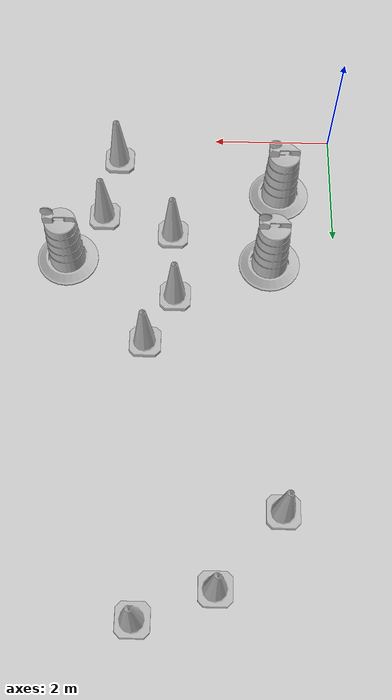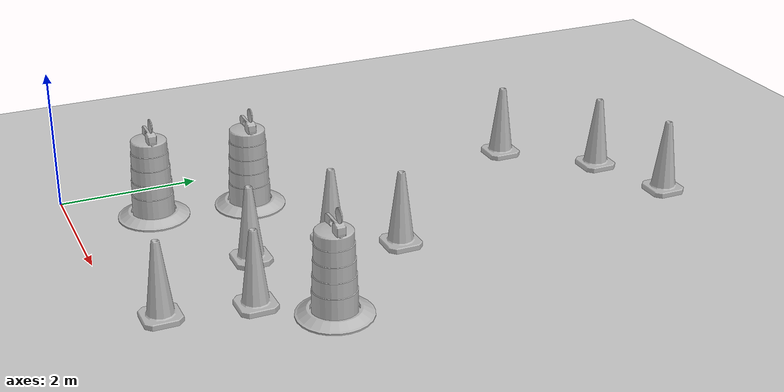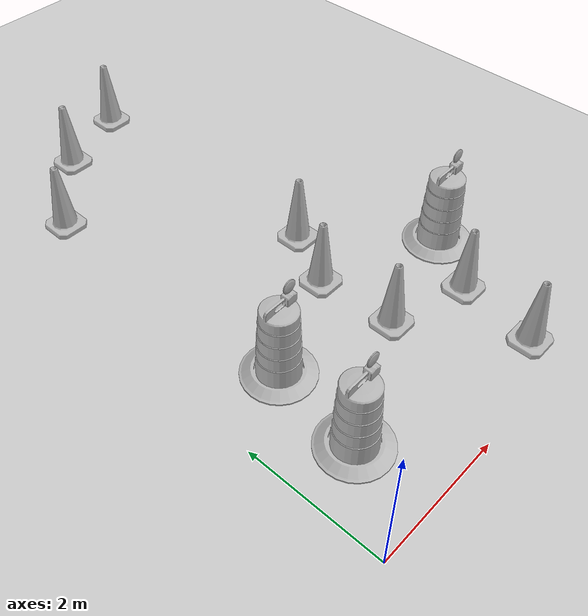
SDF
<sdf version="1.7">
 <world name="default">
  <light name="sun" type="directional">
   <pose>0 0 10 0 -0 0</pose>
   <diffuse>0.8 0.8 0.8 1</diffuse>
   <specular>0.2 0.2 0.2 1</specular>
   <attenuation>
    <range>1000</range>
    <constant>0.9</constant>
    <linear>0.01</linear>
    <quadratic>0.001</quadratic>
   </attenuation>
   <direction>-0.5 0.1 -0.9</direction>
   <spot><inner_angle>0</inner_angle><outer_angle>0</outer_angle><falloff>0</falloff></spot>
  </light>
  <model name="ground_plane">
   <static>1</static>
   <link name="link">
    <collision name="collision">
     <geometry><plane><normal>0 0 1</normal><size>100 100</size></plane></geometry>
     <surface><friction><ode><mu>100</mu><mu2>50</mu2></ode></friction></surface>
    </collision>
    <visual name="visual">
     <cast_shadows>0</cast_shadows>
     <geometry><plane><normal>0 0 1</normal><size>100 100</size></plane></geometry>
     <material>
      <script><uri>file://media/materials/scripts/gazebo.material</uri><name>Gazebo/Grey</name></script>
     </material>
    </visual>
   </link>
  </model>
  <gravity>0 0 -9.8</gravity>
  <magnetic_field>6e-06 2.3e-05 -4.2e-05</magnetic_field>
  <atmosphere type="adiabatic"/>
  <physics type="ode">
   <max_step_size>0.001</max_step_size>
   <real_time_factor>1</real_time_factor>
   <real_time_update_rate>1000</real_time_update_rate>
  </physics>
  <scene><ambient>0.4 0.4 0.4 1</ambient><background>0.7 0.7 0.7 1</background><shadows>1</shadows></scene>
  <audio><device>default</device></audio>
  <spherical_coordinates>
   <surface_model>EARTH_WGS84</surface_model>
   <latitude_deg>0</latitude_deg>
   <longitude_deg>0</longitude_deg>
   <elevation>0</elevation>
   <heading_deg>0</heading_deg>
  </spherical_coordinates>
  <model name="Construction Cone">
   <link name="link">
    <collision name="collision">
     <geometry>
      <mesh><scale>10 10 10</scale><uri>model://construction_cone/meshes/construction_cone.dae</uri></mesh>
     </geometry>
    </collision>
    <visual name="visual">
     <geometry>
      <mesh><scale>10 10 10</scale><uri>model://construction_cone/meshes/construction_cone.dae</uri></mesh>
     </geometry>
    </visual>
    <inertial>
     <inertia><ixx>1</ixx><ixy>0</ixy><ixz>0</ixz><iyy>1</iyy><iyz>0</iyz><izz>1</izz></inertia>
     <mass>1</mass>
    </inertial>
   </link>
   <pose>2.71471 1.99021 -0 0 -1e-06 0</pose>
  </model>
  <model name="Construction Cone_0">
   <link name="link">
    <collision name="collision">
     <geometry>
      <mesh><scale>10 10 10</scale><uri>model://construction_cone/meshes/construction_cone.dae</uri></mesh>
     </geometry>
    </collision>
    <visual name="visual">
     <geometry>
      <mesh><scale>10 10 10</scale><uri>model://construction_cone/meshes/construction_cone.dae</uri></mesh>
     </geometry>
    </visual>
    <inertial>
     <inertia><ixx>1</ixx><ixy>0</ixy><ixz>0</ixz><iyy>1</iyy><iyz>0</iyz><izz>1</izz></inertia>
     <mass>1</mass>
    </inertial>
   </link>
   <pose>2.64521 3.17405 -1e-05 -0 -0 -0</pose>
  </model>
  <model name="Construction Cone_1">
   <link name="link">
    <collision name="collision">
     <geometry>
      <mesh><scale>10 10 10</scale><uri>model://construction_cone/meshes/construction_cone.dae</uri></mesh>
     </geometry>
    </collision>
    <visual name="visual">
     <geometry>
      <mesh><scale>10 10 10</scale><uri>model://construction_cone/meshes/construction_cone.dae</uri></mesh>
     </geometry>
    </visual>
    <inertial>
     <inertia><ixx>1</ixx><ixy>0</ixy><ixz>0</ixz><iyy>1</iyy><iyz>0</iyz><izz>1</izz></inertia>
     <mass>1</mass>
    </inertial>
   </link>
   <pose>3.10228 4.00904 -0 0 -1e-06 0</pose>
  </model>
  <model name="Construction Cone_2">
   <link name="link">
    <collision name="collision">
     <geometry>
      <mesh><scale>10 10 10</scale><uri>model://construction_cone/meshes/construction_cone.dae</uri></mesh>
     </geometry>
    </collision>
    <visual name="visual">
     <geometry>
      <mesh><scale>10 10 10</scale><uri>model://construction_cone/meshes/construction_cone.dae</uri></mesh>
     </geometry>
    </visual>
    <inertial>
     <inertia><ixx>1</ixx><ixy>0</ixy><ixz>0</ixz><iyy>1</iyy><iyz>0</iyz><izz>1</izz></inertia>
     <mass>1</mass>
    </inertial>
   </link>
   <pose>0.951409 6.71825 -0 0 -1e-06 0</pose>
  </model>
  <model name="Construction Cone_3">
   <link name="link">
    <collision name="collision">
     <geometry>
      <mesh><scale>10 10 10</scale><uri>model://construction_cone/meshes/construction_cone.dae</uri></mesh>
     </geometry>
    </collision>
    <visual name="visual">
     <geometry>
      <mesh><scale>10 10 10</scale><uri>model://construction_cone/meshes/construction_cone.dae</uri></mesh>
     </geometry>
    </visual>
    <inertial>
     <inertia><ixx>1</ixx><ixy>0</ixy><ixz>0</ixz><iyy>1</iyy><iyz>0</iyz><izz>1</izz></inertia>
     <mass>1</mass>
    </inertial>
   </link>
   <pose>1.94072 7.84302 -0 0 -0 0</pose>
  </model>
  <model name="Construction Cone_4">
   <link name="link">
    <collision name="collision">
     <geometry>
      <mesh><scale>10 10 10</scale><uri>model://construction_cone/meshes/construction_cone.dae</uri></mesh>
     </geometry>
    </collision>
    <visual name="visual">
     <geometry>
      <mesh><scale>10 10 10</scale><uri>model://construction_cone/meshes/construction_cone.dae</uri></mesh>
     </geometry>
    </visual>
    <inertial>
     <inertia><ixx>1</ixx><ixy>0</ixy><ixz>0</ixz><iyy>1</iyy><iyz>0</iyz><izz>1</izz></inertia>
     <mass>1</mass>
    </inertial>
   </link>
   <pose>3.09671 8.28644 -0 0 -0 0</pose>
  </model>
  <model name="Construction Barrel">
   <link name="link">
    <inertial>
     <pose>0 0 0.4 0 -0 0</pose>
     <mass>500</mass>
     <inertia><ixx>51.2096</ixx><iyy>51.2096</iyy><izz>25</izz><ixy>0</ixy><ixz>0</ixz><iyz>0</iyz></inertia>
    </inertial>
    <collision name="collision">
     <geometry><mesh><uri>model://construction_barrel/meshes/construction_barrel.dae</uri></mesh></geometry>
    </collision>
    <visual name="visual">
     <geometry><mesh><uri>model://construction_barrel/meshes/construction_barrel.dae</uri></mesh></geometry>
    </visual>
   </link>
   <pose>0.907128 1.14577 -2e-06 1e-06 8e-06 -1e-05</pose>
  </model>
  <model name="Construction Barrel_0">
   <link name="link">
    <inertial>
     <pose>0 0 0.4 0 -0 0</pose>
     <mass>500</mass>
     <inertia><ixx>51.2096</ixx><iyy>51.2096</iyy><izz>25</izz><ixy>0</ixy><ixz>0</ixz><iyz>0</iyz></inertia>
    </inertial>
    <collision name="collision">
     <geometry><mesh><uri>model://construction_barrel/meshes/construction_barrel.dae</uri></mesh></geometry>
    </collision>
    <visual name="visual">
     <geometry><mesh><uri>model://construction_barrel/meshes/construction_barrel.dae</uri></mesh></geometry>
    </visual>
   </link>
   <pose>1.09041 2.52399 -2e-06 4e-06 7e-06 -9e-06</pose>
  </model>
  <model name="Construction Barrel_1">
   <link name="link">
    <inertial>
     <pose>0 0 0.4 0 -0 0</pose>
     <mass>500</mass>
     <inertia><ixx>51.2096</ixx><iyy>51.2096</iyy><izz>25</izz><ixy>0</ixy><ixz>0</ixz><iyz>0</iyz></inertia>
    </inertial>
    <collision name="collision">
     <geometry><mesh><uri>model://construction_barrel/meshes/construction_barrel.dae</uri></mesh></geometry>
    </collision>
    <visual name="visual">
     <geometry><mesh><uri>model://construction_barrel/meshes/construction_barrel.dae</uri></mesh></geometry>
    </visual>
   </link>
   <pose>4.46122 2.49 -3e-06 6e-06 1.1e-05 -8e-06</pose>
  </model>
  <model name="Construction Cone_5">
   <link name="link">
    <collision name="collision">
     <geometry>
      <mesh><scale>10 10 10</scale><uri>model://construction_cone/meshes/construction_cone.dae</uri></mesh>
     </geometry>
    </collision>
    <visual name="visual">
     <geometry>
      <mesh><scale>10 10 10</scale><uri>model://construction_cone/meshes/construction_cone.dae</uri></mesh>
     </geometry>
    </visual>
    <inertial>
     <inertia><ixx>1</ixx><ixy>0</ixy><ixz>0</ixz><iyy>1</iyy><iyz>0</iyz><izz>1</izz></inertia>
     <mass>1</mass>
    </inertial>
   </link>
   <pose>3.69815 0.480418 -0 0 -1e-06 0</pose>
  </model>
  <model name="Construction Cone_6">
   <link name="link">
    <collision name="collision">
     <geometry>
      <mesh><scale>10 10 10</scale><uri>model://construction_cone/meshes/construction_cone.dae</uri></mesh>
     </geometry>
    </collision>
    <visual name="visual">
     <geometry>
      <mesh><scale>10 10 10</scale><uri>model://construction_cone/meshes/construction_cone.dae</uri></mesh>
     </geometry>
    </visual>
    <inertial>
     <inertia><ixx>1</ixx><ixy>0</ixy><ixz>0</ixz><iyy>1</iyy><iyz>0</iyz><izz>1</izz></inertia>
     <mass>1</mass>
    </inertial>
   </link>
   <pose>3.89391 1.65053 -0 0 -0 0</pose>
  </model>
 </world>
</sdf>
